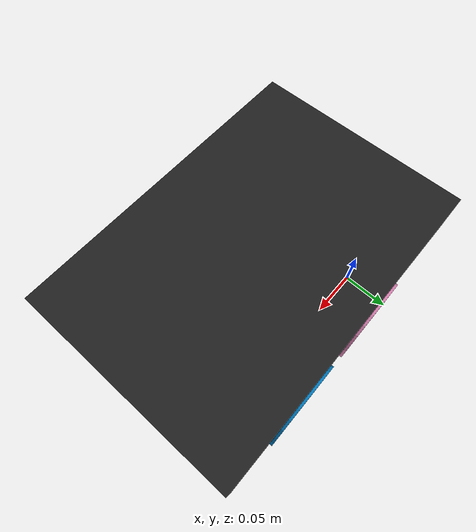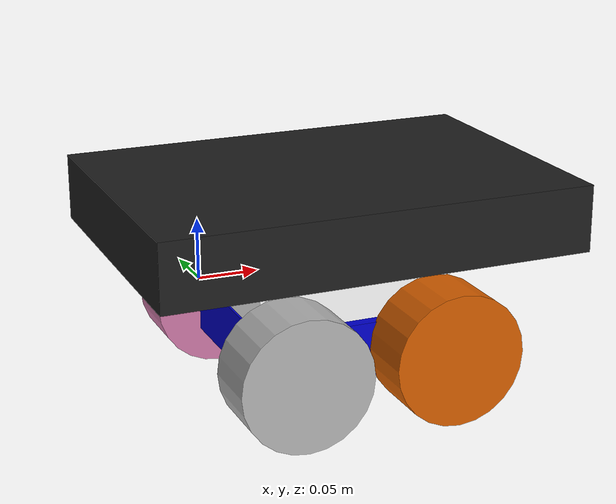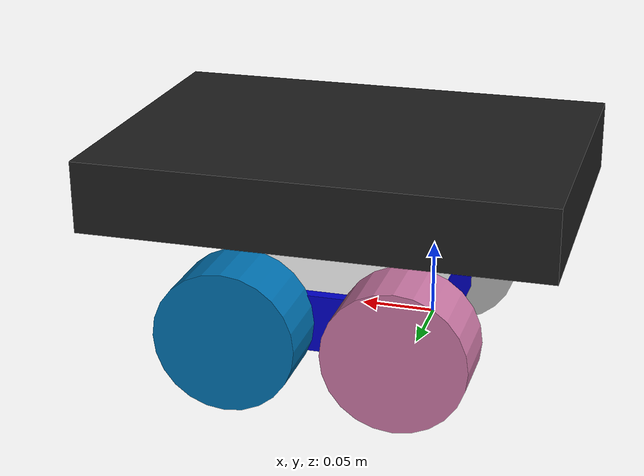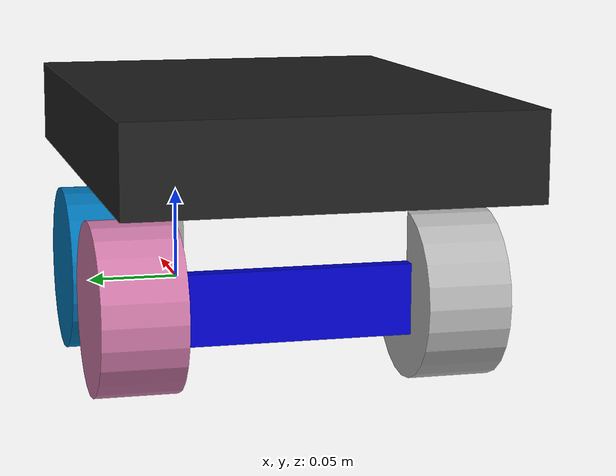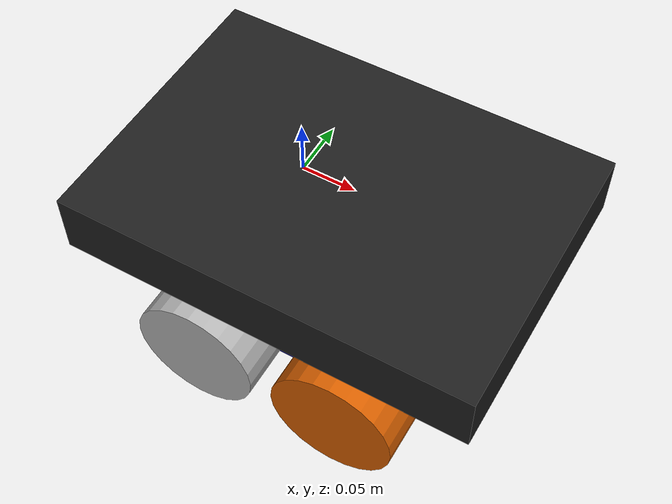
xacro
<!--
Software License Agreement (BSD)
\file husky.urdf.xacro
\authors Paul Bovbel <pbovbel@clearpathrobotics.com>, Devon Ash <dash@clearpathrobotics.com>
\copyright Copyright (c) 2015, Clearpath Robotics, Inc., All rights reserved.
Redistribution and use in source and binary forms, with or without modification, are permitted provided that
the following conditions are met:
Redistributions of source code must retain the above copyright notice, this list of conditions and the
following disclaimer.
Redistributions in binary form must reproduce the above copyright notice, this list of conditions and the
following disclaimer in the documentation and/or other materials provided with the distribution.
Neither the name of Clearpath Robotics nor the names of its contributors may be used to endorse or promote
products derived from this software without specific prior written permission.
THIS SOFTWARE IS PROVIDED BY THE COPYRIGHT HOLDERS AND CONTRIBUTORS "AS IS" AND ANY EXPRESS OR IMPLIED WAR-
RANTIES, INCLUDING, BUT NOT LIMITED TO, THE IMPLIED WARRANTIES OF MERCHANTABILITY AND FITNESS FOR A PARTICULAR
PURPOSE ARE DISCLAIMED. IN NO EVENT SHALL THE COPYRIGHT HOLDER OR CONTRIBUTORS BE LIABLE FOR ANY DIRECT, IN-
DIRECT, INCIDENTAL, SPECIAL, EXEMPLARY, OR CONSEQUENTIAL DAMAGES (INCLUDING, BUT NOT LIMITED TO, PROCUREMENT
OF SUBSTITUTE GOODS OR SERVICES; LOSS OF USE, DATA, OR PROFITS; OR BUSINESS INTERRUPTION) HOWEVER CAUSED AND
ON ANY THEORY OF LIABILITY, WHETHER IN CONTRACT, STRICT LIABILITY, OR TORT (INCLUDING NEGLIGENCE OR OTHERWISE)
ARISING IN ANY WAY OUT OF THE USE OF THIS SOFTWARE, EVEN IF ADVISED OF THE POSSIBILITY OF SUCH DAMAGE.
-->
<?xml version="1.0"?>

<robot name="nemesis" xmlns:xacro="http://ros.org/wiki/xacro">

  <xacro:arg name="robot_namespace" default="/" />

  <!-- Included URDF/XACRO Files -->
  <xacro:include filename="$(find nemesis_description)/urdf/wheel.urdf.xacro" />

   <xacro:property name="M_PI" value="3.14159"/>

  <material name="blue">
        <color rgba="0 0 0.8 1"/>
  </material>

   <material name="white">
        <color rgba="1 1 1 1"/>
   </material>

  <!-- Base Size -->
  <xacro:property name="base_height" value="0.043" />
  <xacro:property name="base_width" value="0.143" />
  <xacro:property name="base_length" value="0.154" />

   <!-- Foundation Size -->
  <xacro:property name="foundation_height" value="0.045" />
  <xacro:property name="foundation_width" value="0.134" />
  <xacro:property name="foundation_length" value="0.154" />

   <!-- Top Chassis Size -->
  <xacro:property name="chassis_height" value="0.052" />
  <xacro:property name="chassis_width" value="0.235" />
  <xacro:property name="chassis_length" value="0.335" />

  <!-- Wheel Mounting Positions -->
  <xacro:property name="x_joint_offset" value="0.0165" />
  <xacro:property name="y_joint_offset" value="0.0235" />
  <xacro:property name="z_joint_offset" value="0.021" />

  <!-- Wheel Properties -->
  <xacro:property name="wheel_length" value="0.05" />
  <xacro:property name="wheel_radius" value="0.0515" />

  <xacro:property name="t256_to_Base_x" value="-${1/2*(chassis_length - foundation_length) + foundation_length}" />
  <xacro:property name="t256_to_Base_y" value="${1/2*chassis_length - 1/2*(chassis_length - foundation_length)}" />
  <xacro:property name="t256_to_Base_z" value="-${chassis_height + 0.002 + foundation_height + 0.002}" />

  <!-- Base link is the center of the robot's bottom plate -->
  <link name="base_link">
    <visual>
      <origin xyz="${base_length*1/2} ${-base_width*1/2} ${-base_height*1/2} " rpy="0 0 0" />
      <geometry>
         <box size="${base_length} ${base_width} ${base_height}"/>
      </geometry>
      <material name="blue"/>
    </visual>
    <collision>
      <origin xyz="${base_length*1/2} ${-base_width*1/2} ${-base_height*1/2} " rpy="0 0 0" />
      <geometry>
        <box size="${base_length} ${base_width} ${base_height}"/>
      </geometry>
    </collision>
    <inertial>
      <mass value="1.0" />
      <origin xyz="0.0 0.0 0.0" />
      <inertia ixx="0.16666700" ixy="0.00" ixz="0.00" iyy="0.16666700" iyz="0.00" izz="0.16666700" />
    </inertial>
  </link>

   <link name="foundation_link">
    <visual>
      <origin xyz="${1/2* foundation_length} ${-1/2* foundation_width}  ${1/2* foundation_height}" rpy="0 0 0" />
      <geometry>
         <box size="${foundation_length} ${foundation_width} ${foundation_height}"/>
      </geometry>
      <material name="white"/>
    </visual>
    <collision>
       <origin xyz="${1/2* foundation_length} ${-1/2* foundation_width}  ${1/2* foundation_height}" rpy="0 0 0" />
      <geometry>
         <box size="${foundation_length} ${foundation_width} ${foundation_height}"/>
      </geometry>
    </collision>
   </link>

    <joint name="foundation_joint" type="fixed">
    <origin xyz="0 -0.0045 0.002" rpy="0 0 0" />
    <parent link="base_link" />
    <child link="foundation_link" />
    </joint>

     <link name="chassis_link">
    <visual>
      <origin xyz="${1/2* chassis_length} ${-1/2* chassis_width}  ${-1/2* chassis_height}" rpy="0 0 0" />
      <geometry>
         <box size="${chassis_length} ${chassis_width} ${chassis_height}"/>
      </geometry>
      <material name="black"/>
    </visual>
    <collision>
       <origin xyz="${1/2* foundation_length} ${-1/2* foundation_width}  ${-1/2* foundation_height}" rpy="0 0 0" />
      <geometry>
        <box size="${chassis_length} ${chassis_width} ${chassis_height}"/>
      </geometry>
    </collision>
   </link>

    <joint name="chassis_joint" type="fixed">
    <origin xyz="-0.0905 0.0505 0.099" rpy="0 0 0" />
    <parent link="foundation_link" />
    <child link="chassis_link" />
    </joint>

  <!-- Base footprint is on the ground under the robot -->
  <link name="base_footprint"/>

  <joint name="base_footprint_joint" type="fixed">
    <origin xyz="${1/2*base_length} ${-1/2* base_width} ${ - z_joint_offset  - wheel_radius}" rpy="0 0 0" />
    <parent link="base_link" />
    <child link="base_footprint" />
  </joint>

  <!-- Inertial link stores the robot's inertial information -->

  <!-- Nemesis wheel macros -->
  <xacro:nemesis_wheel wheel_prefix="front_left">
    <origin xyz="${base_length - x_joint_offset} ${y_joint_offset} ${-z_joint_offset}" rpy="0 0 0" />
  </xacro:nemesis_wheel>
  <xacro:nemesis_wheel wheel_prefix="front_right">
    <origin xyz="${base_length - x_joint_offset} ${-base_width - y_joint_offset} ${-z_joint_offset}" rpy="0 0 0" />
  </xacro:nemesis_wheel>
  <xacro:nemesis_wheel wheel_prefix="rear_left">
    <origin xyz="${x_joint_offset} ${y_joint_offset} ${-z_joint_offset}" rpy="0 0 0" />
  </xacro:nemesis_wheel>
  <xacro:nemesis_wheel wheel_prefix="rear_right">
    <origin xyz="${x_joint_offset} ${-base_width - y_joint_offset} ${-z_joint_offset}" rpy="0 0 0" />
  </xacro:nemesis_wheel>

</robot>

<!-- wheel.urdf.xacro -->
<robot xmlns:xacro="http://ros.org/wiki/xacro" name="nemesis_wheel">

	<xacro:macro name="nemesis_wheel" params="wheel_prefix *joint_pose">
		<link name="${wheel_prefix}_wheel_link">
			<inertial>
				<mass value="0.105425" />
				<origin xyz="0 0 0" />
				<inertia  ixx="0.02467" ixy="0" ixz="0" iyy="0.04411" iyz="0" izz="0.02467" />
			</inertial>
            <visual>
				<origin xyz="0 0 0" rpy="${M_PI/2} 0 0" />
				<geometry>
					<cylinder length="${wheel_length}" radius="${wheel_radius}" />
				</geometry>

		    </visual>
			<collision>
				<origin xyz="0 0 0" rpy="${M_PI/2} 0 0" />
				<geometry>
					<cylinder length="${wheel_length}" radius="${wheel_radius}" />
				</geometry>
			</collision>
		</link>
		<joint name="${wheel_prefix}_wheel" type="continuous">
			<parent link="base_link"/>
			<child link="${wheel_prefix}_wheel_link"/>
			<xacro:insert_block name="joint_pose"/>
			<axis xyz="0 1 0" rpy="0 0 0" />
		</joint>

		<transmission name="${wheel_prefix}_wheel_trans" type="SimpleTransmission">
			<type>transmission_interface/SimpleTransmission</type>
			<actuator name="${wheel_prefix}_wheel_motor">
				<mechanicalReduction>1</mechanicalReduction>
			</actuator>
			<joint name="${wheel_prefix}_wheel">
				<hardwareInterface>hardware_interface/VelocityJointInterface</hardwareInterface>
			</joint>
		</transmission>

	</xacro:macro>
</robot>
